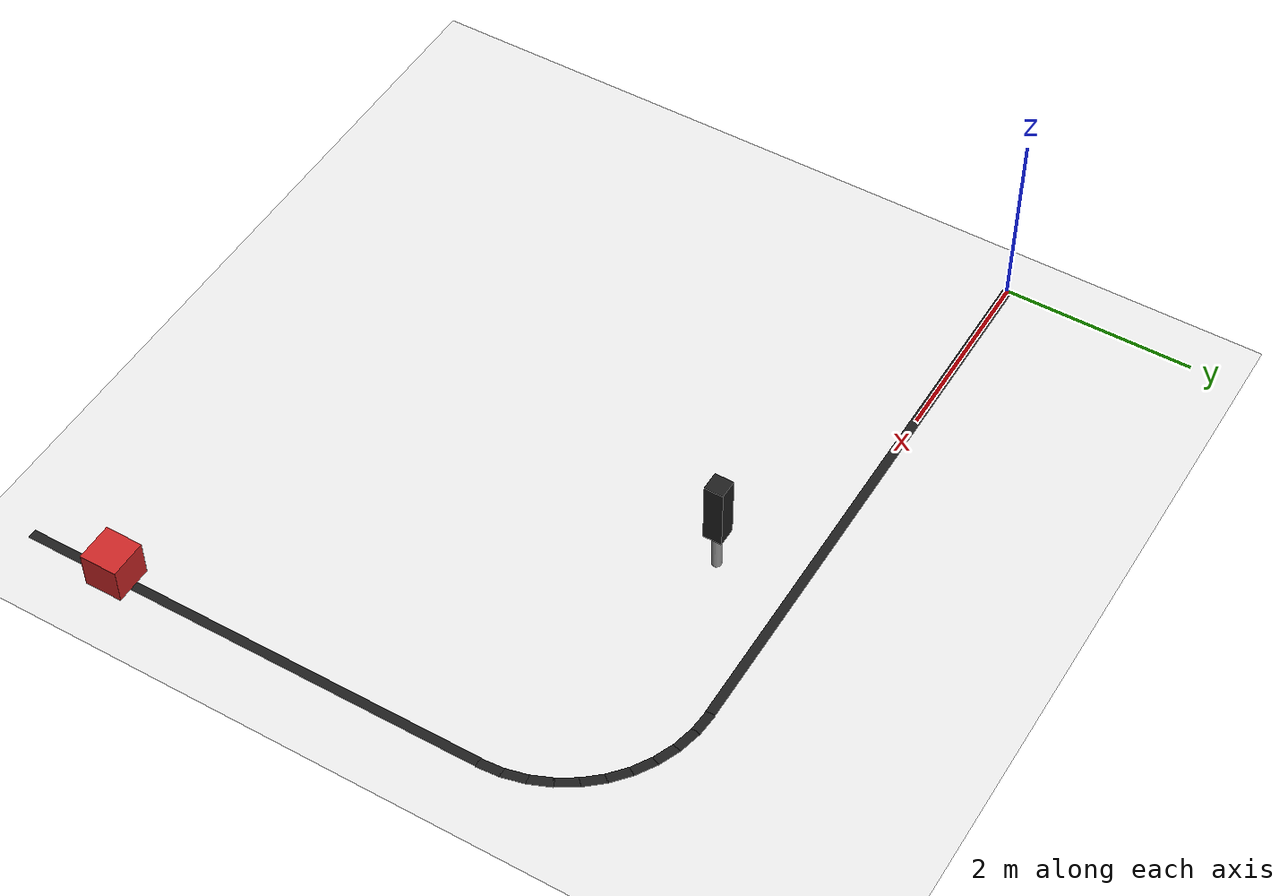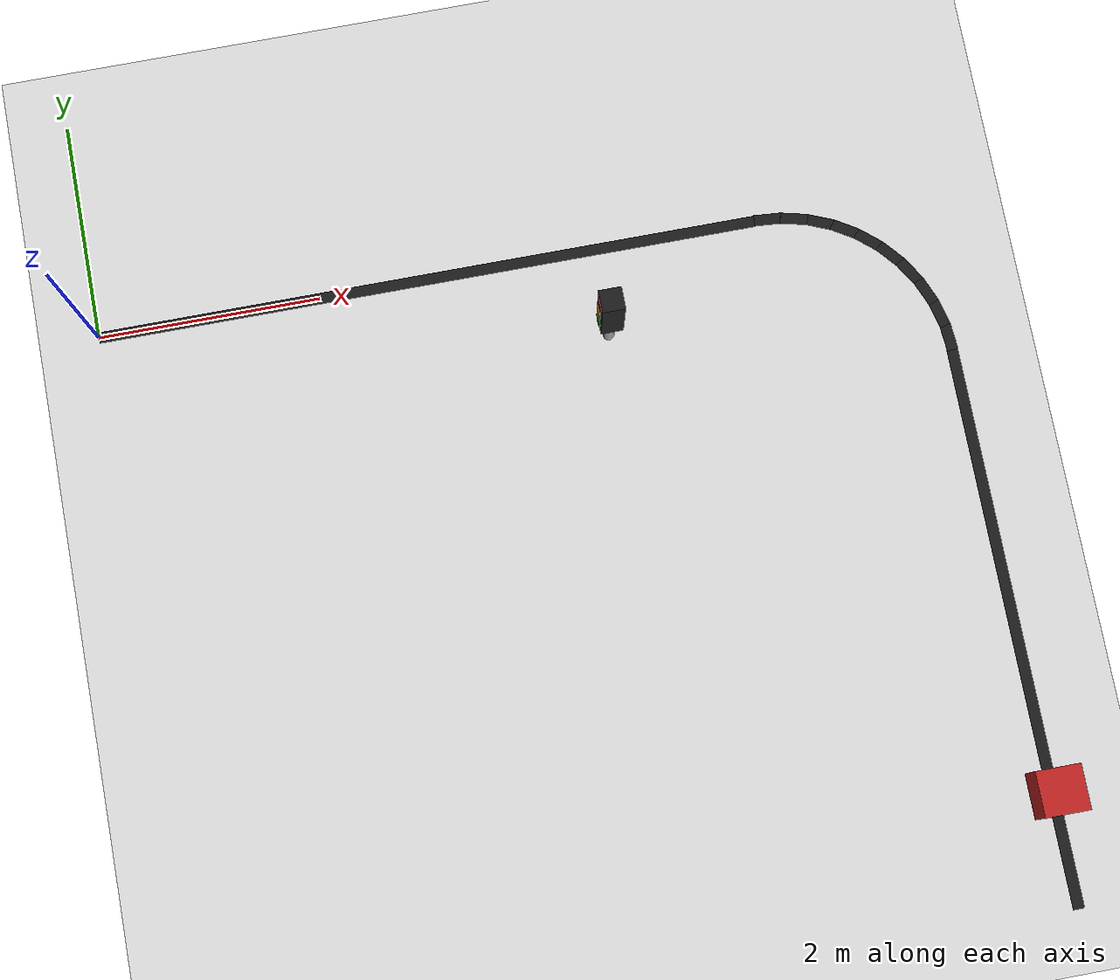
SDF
<sdf version="1.6">
 <world name="l_turn">
  <plugin name="gazebo_ros_state" filename="libgazebo_ros_state.so"/>
  <light type="directional" name="sun">
   <pose>0 0 10 0 0 0</pose>
   <diffuse>0.95 0.95 0.90 1</diffuse>
   <specular>0.3 0.3 0.3 1</specular>
   <attenuation>
    <range>1000</range>
    <constant>0.9</constant>
    <linear>0.01</linear>
    <quadratic>0.001</quadratic>
   </attenuation>
   <direction>-0.3 0.2 -0.9</direction>
  </light>
  <model name="ground_plane">
   <static>true</static>
   <link name="link">
    <collision name="collision">
     <geometry><plane><normal>0 0 1</normal><size>100 100</size></plane></geometry>
     <surface><friction><ode><mu>100</mu><mu2>50</mu2></ode></friction></surface>
    </collision>
    <visual name="visual">
     <cast_shadows>false</cast_shadows>
     <geometry><plane><normal>0 0 1</normal><size>100 100</size></plane></geometry>
     <material>
      <script><uri>file://media/materials/scripts/gazebo.material</uri><name>Gazebo/White</name></script>
     </material>
    </visual>
   </link>
  </model>
  <model name="lane_0">
   <static>true</static>
   <link name="link">
    <visual name="visual">
     <geometry><box><size>6.0000 0.1000 0.001</size></box></geometry>
     <material>
      <script><uri>file://media/materials/scripts/gazebo.material</uri><name>Gazebo/Black</name></script>
     </material>
    </visual>
   </link>
   <pose>3.0000 0.0000 0.0005 0 0 0.0000</pose>
  </model>
  <model name="lane_1">
   <static>true</static>
   <link name="link">
    <visual name="visual">
     <geometry><box><size>0.2474 0.1000 0.001</size></box></geometry>
     <material>
      <script><uri>file://media/materials/scripts/gazebo.material</uri><name>Gazebo/Black</name></script>
     </material>
    </visual>
   </link>
   <pose>6.1177 -0.0046 0.0005 0 0 3.0631</pose>
  </model>
  <model name="lane_2">
   <static>true</static>
   <link name="link">
    <visual name="visual">
     <geometry><box><size>0.2474 0.1000 0.001</size></box></geometry>
     <material>
      <script><uri>file://media/materials/scripts/gazebo.material</uri><name>Gazebo/Black</name></script>
     </material>
    </visual>
   </link>
   <pose>6.3502 -0.0414 0.0005 0 0 2.9060</pose>
  </model>
  <model name="lane_3">
   <static>true</static>
   <link name="link">
    <visual name="visual">
     <geometry><box><size>0.2474 0.1000 0.001</size></box></geometry>
     <material>
      <script><uri>file://media/materials/scripts/gazebo.material</uri><name>Gazebo/Black</name></script>
     </material>
    </visual>
   </link>
   <pose>6.5740 -0.1142 0.0005 0 0 2.7489</pose>
  </model>
  <model name="lane_4">
   <static>true</static>
   <link name="link">
    <visual name="visual">
     <geometry><box><size>0.2474 0.1000 0.001</size></box></geometry>
     <material>
      <script><uri>file://media/materials/scripts/gazebo.material</uri><name>Gazebo/Black</name></script>
     </material>
    </visual>
   </link>
   <pose>6.7837 -0.2210 0.0005 0 0 2.5918</pose>
  </model>
  <model name="lane_5">
   <static>true</static>
   <link name="link">
    <visual name="visual">
     <geometry><box><size>0.2474 0.1000 0.001</size></box></geometry>
     <material>
      <script><uri>file://media/materials/scripts/gazebo.material</uri><name>Gazebo/Black</name></script>
     </material>
    </visual>
   </link>
   <pose>6.9742 -0.3594 0.0005 0 0 2.4347</pose>
  </model>
  <model name="lane_6">
   <static>true</static>
   <link name="link">
    <visual name="visual">
     <geometry><box><size>0.2474 0.1000 0.001</size></box></geometry>
     <material>
      <script><uri>file://media/materials/scripts/gazebo.material</uri><name>Gazebo/Black</name></script>
     </material>
    </visual>
   </link>
   <pose>7.1406 -0.5258 0.0005 0 0 2.2777</pose>
  </model>
  <model name="lane_7">
   <static>true</static>
   <link name="link">
    <visual name="visual">
     <geometry><box><size>0.2474 0.1000 0.001</size></box></geometry>
     <material>
      <script><uri>file://media/materials/scripts/gazebo.material</uri><name>Gazebo/Black</name></script>
     </material>
    </visual>
   </link>
   <pose>7.2790 -0.7163 0.0005 0 0 2.1206</pose>
  </model>
  <model name="lane_8">
   <static>true</static>
   <link name="link">
    <visual name="visual">
     <geometry><box><size>0.2474 0.1000 0.001</size></box></geometry>
     <material>
      <script><uri>file://media/materials/scripts/gazebo.material</uri><name>Gazebo/Black</name></script>
     </material>
    </visual>
   </link>
   <pose>7.3858 -0.9260 0.0005 0 0 1.9635</pose>
  </model>
  <model name="lane_9">
   <static>true</static>
   <link name="link">
    <visual name="visual">
     <geometry><box><size>0.2474 0.1000 0.001</size></box></geometry>
     <material>
      <script><uri>file://media/materials/scripts/gazebo.material</uri><name>Gazebo/Black</name></script>
     </material>
    </visual>
   </link>
   <pose>7.4586 -1.1498 0.0005 0 0 1.8064</pose>
  </model>
  <model name="lane_10">
   <static>true</static>
   <link name="link">
    <visual name="visual">
     <geometry><box><size>0.2474 0.1000 0.001</size></box></geometry>
     <material>
      <script><uri>file://media/materials/scripts/gazebo.material</uri><name>Gazebo/Black</name></script>
     </material>
    </visual>
   </link>
   <pose>7.4954 -1.3823 0.0005 0 0 1.6493</pose>
  </model>
  <model name="lane_11">
   <static>true</static>
   <link name="link">
    <visual name="visual">
     <geometry><box><size>5.0000 0.1000 0.001</size></box></geometry>
     <material>
      <script><uri>file://media/materials/scripts/gazebo.material</uri><name>Gazebo/Black</name></script>
     </material>
    </visual>
   </link>
   <pose>7.5000 -4.0000 0.0005 0 0 -1.5708</pose>
  </model>
  <model name="traffic_light">
   <static>true</static>
   <link name="pole">
    <collision name="collision">
     <geometry><cylinder><radius>0.05</radius><length>0.450</length></cylinder></geometry>
    </collision>
    <visual name="visual">
     <geometry><cylinder><radius>0.05</radius><length>0.450</length></cylinder></geometry>
     <material>
      <script><uri>file://media/materials/scripts/gazebo.material</uri><name>Gazebo/Grey</name></script>
     </material>
    </visual>
    <pose>0 0 0.2250 0 0 0</pose>
   </link>
   <link name="head">
    <collision name="collision"><geometry><box><size>0.200 0.200 0.700</size></box></geometry></collision>
    <visual name="visual">
     <geometry><box><size>0.200 0.200 0.700</size></box></geometry>
     <material>
      <script><uri>file://media/materials/scripts/gazebo.material</uri><name>Gazebo/Black</name></script>
     </material>
    </visual>
    <pose>0 0 0.8000 0 0 0</pose>
   </link>
   <link name="red_light">
    <visual name="visual">
     <geometry><cylinder><radius>0.060</radius><length>0.02</length></cylinder></geometry>
     <material>
      <script><uri>file://media/materials/scripts/gazebo.material</uri><name>Gazebo/Red</name></script>
     </material>
    </visual>
    <pose>0 0.1010 1.0450 1.5708 0 0</pose>
   </link>
   <link name="yellow_light">
    <visual name="visual">
     <geometry><cylinder><radius>0.060</radius><length>0.02</length></cylinder></geometry>
     <material>
      <script><uri>file://media/materials/scripts/gazebo.material</uri><name>Gazebo/Yellow</name></script>
     </material>
    </visual>
    <pose>0 0.1010 0.8000 1.5708 0 0</pose>
   </link>
   <link name="green_light">
    <visual name="visual">
     <geometry><cylinder><radius>0.060</radius><length>0.02</length></cylinder></geometry>
     <material>
      <script><uri>file://media/materials/scripts/gazebo.material</uri><name>Gazebo/Green</name></script>
     </material>
    </visual>
    <pose>0 0.1010 0.5550 1.5708 0 0</pose>
   </link>
   <pose>4.5000 -0.8000 0.0 0 0 1.5708</pose>
  </model>
  <model name="obstacle_box">
   <static>true</static>
   <link name="link">
    <collision name="collision"><geometry><box><size>0.400 0.400 0.400</size></box></geometry></collision>
    <visual name="visual">
     <geometry><box><size>0.400 0.400 0.400</size></box></geometry>
     <material>
      <script><uri>file://media/materials/scripts/gazebo.material</uri><name>Gazebo/Red</name></script>
     </material>
    </visual>
   </link>
   <pose>7.5000 -5.5000 0.2000 0 0 0</pose>
  </model>
 </world>
</sdf>
